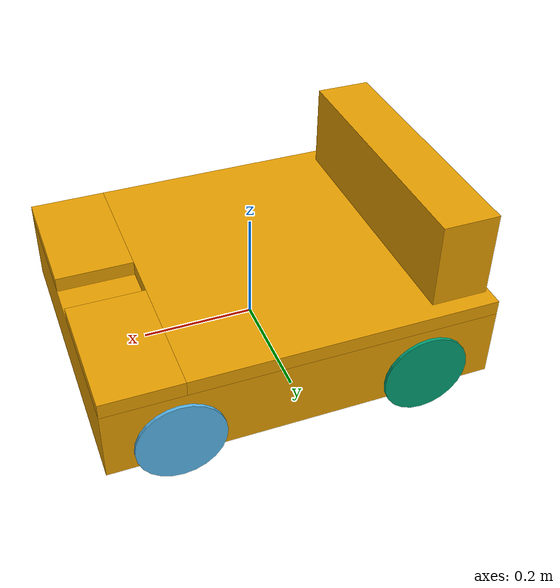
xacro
<?xml version="1.0"?>
<robot xmlns:xacro="http://www.ros.org/wiki/xacro" name="senior">
  <xacro:arg name="controllers_file" default=""/>
  <xacro:arg name="rear_attachment" default="true"/>
  <xacro:arg name="lidar_rate" default="10"/>
  <link name="base_link">
    <inertial><mass value="30"/><origin xyz="0 0 0.0593"/><inertia ixx="0.8" iyy="1.2" izz="1.7" ixy="0" ixz="0" iyz="0"/></inertial>
    <!-- Camera aperture is visual only; conservative collision envelope remains intact. -->
    <visual><origin xyz="0 0 0.0460875"/><geometry><box size="0.674 0.54 0.127825"/></geometry></visual>
    <visual><origin xyz="-0.0685 0 0.1232125"/><geometry><box size="0.537 0.54 0.026425"/></geometry></visual>
    <visual><origin xyz="0.2685 0.155 0.1232125"/><geometry><box size="0.137 0.23 0.026425"/></geometry></visual>
    <visual><origin xyz="0.2685 -0.155 0.1232125"/><geometry><box size="0.137 0.23 0.026425"/></geometry></visual>
    <collision><origin xyz="0 0 0.0593"/><geometry><box size="0.674 0.54 0.15425"/></geometry></collision>
    <!-- Conservative rear attachment represents actual occlusion, not masked scan values. -->
    <xacro:if value="$(arg rear_attachment)">
      <visual><origin xyz="-0.28 0 0.20"/><geometry><box size="0.10 0.48 0.18"/></geometry></visual>
      <collision><origin xyz="-0.28 0 0.20"/><geometry><box size="0.10 0.48 0.18"/></geometry></collision>
    </xacro:if>
  </link>
  <xacro:macro name="wheel" params="name x y">
    <link name="${name}_wheel"><inertial><mass value="1"/><inertia ixx="0.002" iyy="0.003" izz="0.002" ixy="0" ixz="0" iyz="0"/></inertial><visual><origin rpy="1.57079632679 0 0"/><geometry><cylinder radius="0.076" length="0.06615"/></geometry></visual><collision><origin rpy="1.57079632679 0 0"/><geometry><cylinder radius="0.076" length="0.06615"/></geometry></collision></link>
    <joint name="${name}_joint" type="continuous"><parent link="base_link"/><child link="${name}_wheel"/><origin xyz="${x} ${y} 0.016471"/><axis xyz="0 1 0"/><limit effort="100" velocity="20"/></joint>
  </xacro:macro>
  <xacro:wheel name="left_front" x="0.21399916" y="0.24259043"/>
  <xacro:wheel name="left_back" x="-0.21400084" y="0.24259043"/>
  <xacro:wheel name="right_front" x="0.21398716" y="-0.23856357"/>
  <xacro:wheel name="right_back" x="-0.21401284" y="-0.23856357"/>
  <link name="laser_link"/><joint name="laser_joint" type="fixed"><parent link="base_link"/><child link="laser_link"/><origin xyz="0.15699 0.00201 0.14652"/></joint>
  <link name="camera_link"/><joint name="camera_joint" type="fixed"><parent link="base_link"/><child link="camera_link"/><origin xyz="0.2316 0.00224 0.1282"/></joint>
  <link name="camera_optical_frame"/><joint name="camera_optical_joint" type="fixed"><parent link="camera_link"/><child link="camera_optical_frame"/><origin rpy="-1.57079632679 0 -1.57079632679"/></joint>
  <link name="imu_link"/><joint name="imu_joint" type="fixed"><parent link="base_link"/><child link="imu_link"/></joint>
  <gazebo reference="laser_link"><sensor name="laser" type="gpu_lidar"><topic>/scan</topic><update_rate>$(arg lidar_rate)</update_rate><ignition_frame_id>laser_link</ignition_frame_id><lidar><scan><horizontal><samples>720</samples><min_angle>-3.14159265</min_angle><max_angle>3.14159265</max_angle></horizontal></scan><range><min>0.08</min><max>20</max><resolution>0.01</resolution></range></lidar></sensor></gazebo>
  <gazebo reference="camera_link"><sensor name="rgbd" type="rgbd_camera"><topic>/camera</topic><update_rate>10</update_rate><ignition_frame_id>camera_optical_frame</ignition_frame_id><camera><horizontal_fov>1.047</horizontal_fov><image><width>640</width><height>480</height><format>R8G8B8</format></image><clip><near>0.1</near><far>10</far></clip></camera></sensor></gazebo>
  <gazebo reference="imu_link"><sensor name="imu" type="imu"><topic>/imu/data</topic><update_rate>50</update_rate><ignition_frame_id>imu_link</ignition_frame_id><always_on>true</always_on></sensor></gazebo>
  <ros2_control name="GazeboSimSystem" type="system"><hardware><plugin>gz_ros2_control/GazeboSimSystem</plugin></hardware>
    <xacro:macro name="control_joint" params="name"><joint name="${name}_joint"><command_interface name="velocity"/><state_interface name="position"/><state_interface name="velocity"/></joint></xacro:macro>
    <xacro:control_joint name="left_front"/><xacro:control_joint name="left_back"/><xacro:control_joint name="right_front"/><xacro:control_joint name="right_back"/>
  </ros2_control>
  <gazebo>
    <!-- //Compatible: Humble spawner lacks controller ROS argument support. -->
    <plugin filename="gz_ros2_control-system" name="gz_ros2_control::GazeboSimROS2ControlPlugin"><parameters>$(arg controllers_file)</parameters><ros><remapping>/drive/cmd_vel_unstamped:=/cmd_vel</remapping><remapping>/drive/odom:=/wheel/odom</remapping></ros></plugin>
    <plugin filename="ignition-gazebo-odometry-publisher-system" name="ignition::gazebo::systems::OdometryPublisher"><odom_frame>world</odom_frame><robot_base_frame>base_link</robot_base_frame><odom_topic>/ground_truth/odom</odom_topic><tf_topic>/ground_truth/pose_unbridged</tf_topic><dimensions>3</dimensions></plugin>
  </gazebo>
</robot>
